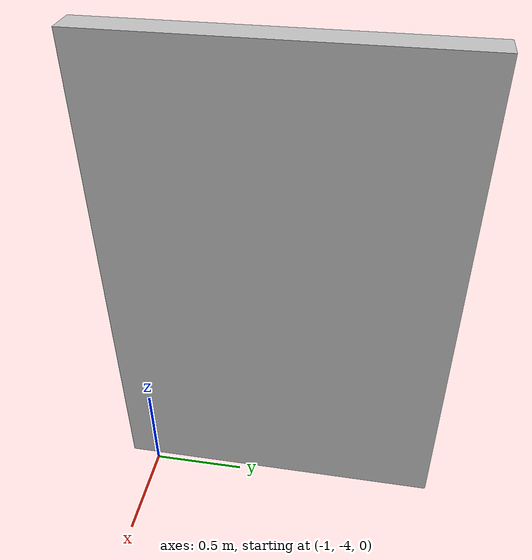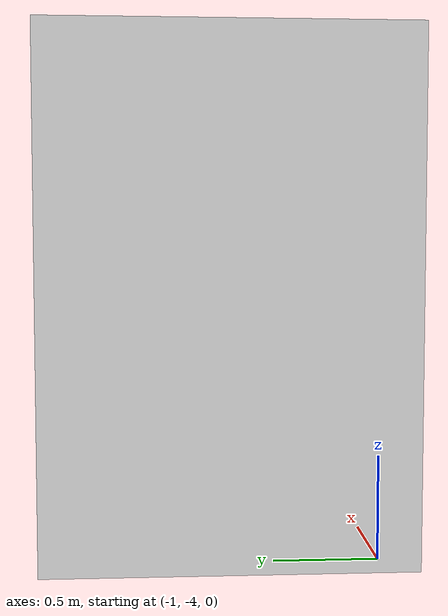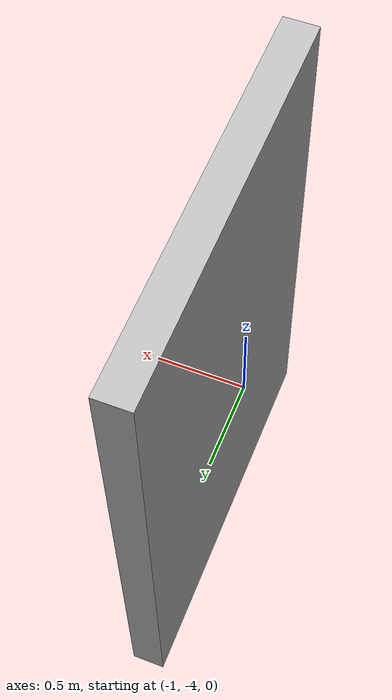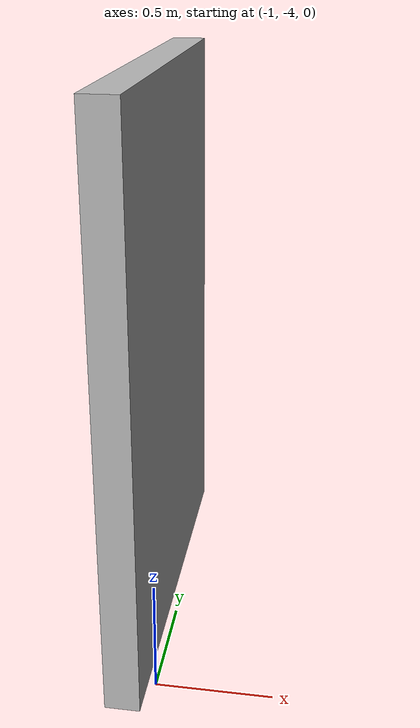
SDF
<?xml version='1.0'?>
<sdf version='1.7'>
  <model name='TrolleyImage'>
    <pose>-0.9925 -1.6825 0 0 0 0</pose>
    <static>true</static>

    <link name='Wall_0'>

      <!-- Rotate 90 degrees -->
      <pose>-0.1175 -1.6075 0 0 0 1.5708</pose>

      <!-- Collision -->
      <collision name='Wall_0_Collision'>
        <pose>0 0 1.25 0 0 0</pose>
        <geometry>
          <box>
            <size>1.75 0.15 2.5</size>
          </box>
        </geometry>
      </collision>

      <!-- Visual -->
      <visual name='Wall_0_Visual'>
        <pose>0 0 1.25 0 0 0</pose>
        <geometry>
          <box>
            <size>1.75 0.15 2.5</size>
          </box>
        </geometry>

        <material>
          <script>
            <uri>model://TrolleyImage/materials/scripts</uri>
            <uri>model://TrolleyImage/materials/textures</uri>
            <name>Trolley/ImageTexture</name>
          </script>
        </material>

      </visual>

    </link>
  </model>
</sdf>
